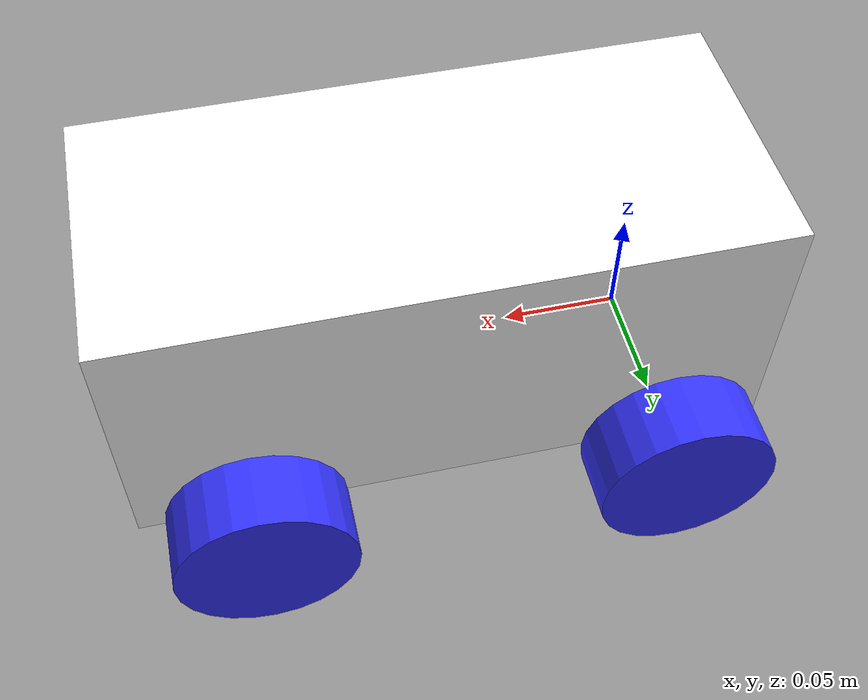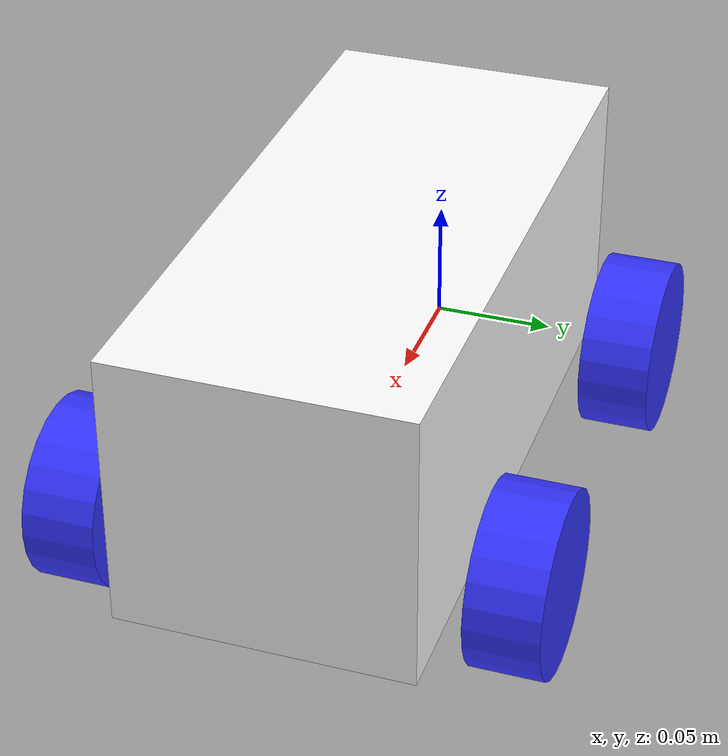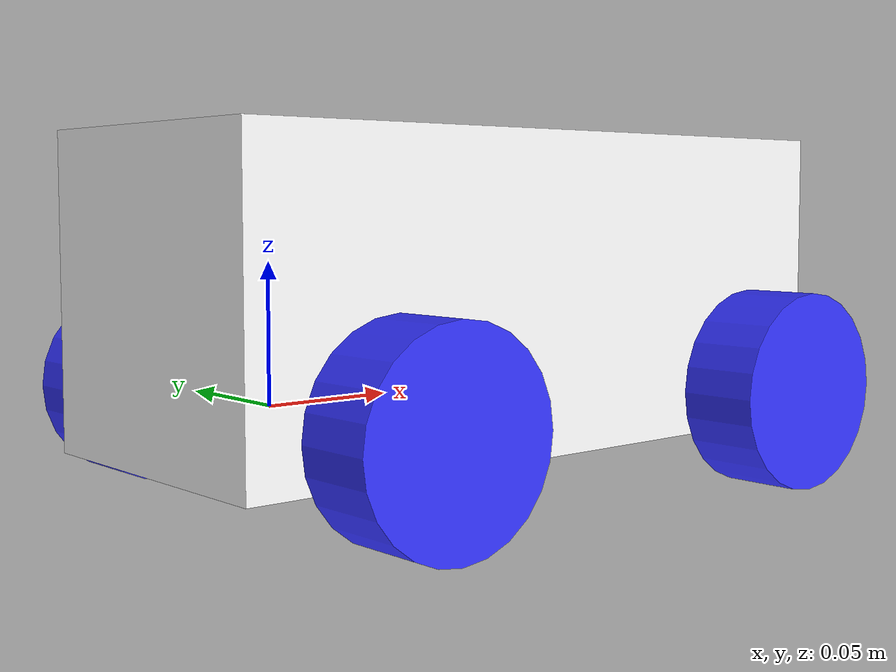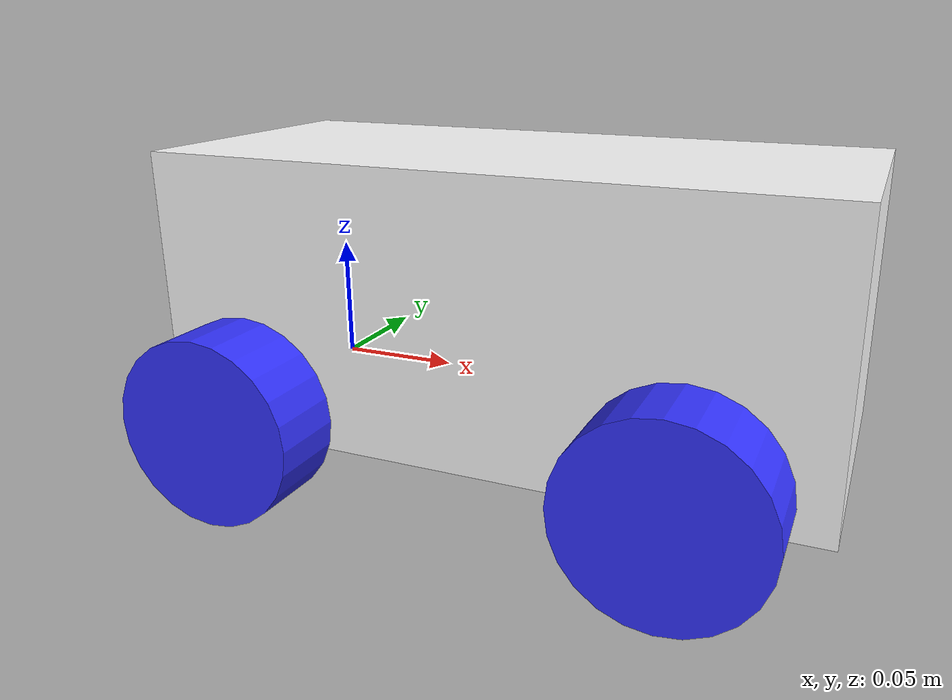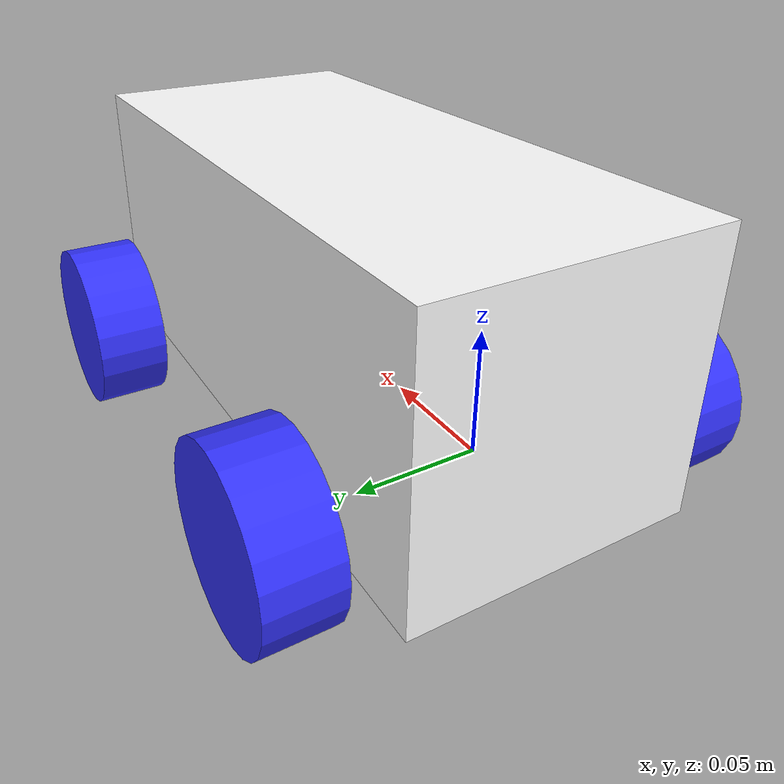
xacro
<?xml version="1.0"?>
<!-- 4 Wheel Robot with front steering and rear drive -->
<robot xmlns:xacro="http://www.ros.org/wiki/xacro" name="carlikebot_robot">
  <xacro:arg name="prefix" default="" />

  <xacro:include
    filename="carlikebot_description.urdf.xacro" />

  <!-- Import Rviz colors -->
  <xacro:include
    filename="carlikebot.materials.xacro" />

  <!-- Import carlikebot ros2_control description -->
  <xacro:include
    filename="$(find ackermann_arduino)/ros2_control/carlikebot.ros2_control.xacro" />

  <xacro:carlikebot prefix="$(arg prefix)" />

  <xacro:carlikebot_ros2_control
    name="CarlikeBot" prefix="$(arg prefix)" />

</robot>

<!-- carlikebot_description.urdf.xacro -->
<robot xmlns:xacro="http://www.ros.org/wiki/xacro">
  <xacro:include filename="inertial_macros.xacro" />

  <xacro:macro name="carlikebot" params="prefix">

    <!-- VARIABLES-->
    <xacro:property name="chassis_length" value="0.27" />
    <xacro:property name="chassis_width" value="0.1205" />
    <xacro:property name="chassis_height" value="0.115" />
    <xacro:property name="chassis_to_back_wheels_distance" value="0.048" />
    <xacro:property name="chassis_mass" value="1.1" />
    <xacro:property name="wheel_track" value="0.175" />
    <xacro:property name="front_wheel_track" value="0.11" />
    <xacro:property name="wheel_radius" value="0.0368" />
    <xacro:property name="wheel_length" value="0.0295" />
    <xacro:property name="wheel_mass" value="0.05" />
    <xacro:property name="wheel_base" value="0.172" />

    <!-- BASE LINK -->
    <link name="base_link" />

    <!-- BASE_FOOTPRINT LINK -->

    <joint name="base_footprint_joint" type="fixed">
      <parent link="base_link" />
      <child link="base_footprint" />
      <origin xyz="0 0 0" rpy="0 0 0" />
    </joint>

    <link name="base_footprint" />

    <!-- CHASSIS LINK -->
    <joint name="chassis_joint" type="fixed">
      <parent link="base_link" />
      <child link="chassis" />
      <origin xyz="-${chassis_to_back_wheels_distance} 0.0 0.0" />
    </joint>
    <link name="chassis">
      <visual>
        <origin xyz="${chassis_length/2} 0.0 ${chassis_height/3}" />
        <geometry>
          <box size="${chassis_length} ${chassis_width} ${chassis_height}" />
        </geometry>
        <material name="white" />
      </visual>
      <collision>
        <origin xyz="${chassis_length/2} 0.0 ${chassis_height/3}" />
        <geometry>
          <box size="${chassis_length} ${chassis_width} ${chassis_height}" />
        </geometry>
      </collision>
      <xacro:inertial_box mass="${chassis_mass}" x="${chassis_length}" y="${chassis_width}"
        z="${chassis_height}">
        <origin xyz="0.0 0 0.0" />
      </xacro:inertial_box>
    </link>

    <gazebo reference="chassis">
      <material>Gazebo/White</material>
    </gazebo>

    <!-- REAR LEFT WHEEL LINK -->
    <joint name="rear_left_wheel_joint" type="continuous">
      <parent link="base_link" />
      <child link="rear_left_wheel" />
      <origin xyz="0 ${wheel_track/2} 0" rpy="-${pi/2} 0 0" />
      <axis xyz="0 0 1" />
    </joint>

    <link name="rear_left_wheel">
      <visual>
        <geometry>
          <cylinder radius="${wheel_radius}" length="${wheel_length}" />
        </geometry>
        <material name="blue" />
      </visual>
      <collision>
        <geometry>
          <sphere radius="${wheel_radius}" />
        </geometry>
      </collision>
      <xacro:inertial_cylinder mass="${wheel_mass}" length="${wheel_length}"
        radius="${wheel_radius}">
        <origin xyz="0 0 0" rpy="0 0 0" />
      </xacro:inertial_cylinder>
    </link>

    <gazebo reference="rear_left_wheel">
      <material>Gazebo/Blue</material>
    </gazebo>

    <!-- REAR RIGHT WHEEL LINK -->
    <joint name="rear_right_wheel_joint" type="continuous">
      <parent link="base_link" />
      <child link="rear_right_wheel" />
      <origin xyz="0 -${wheel_track/2} 0" rpy="${pi/2} 0 0" />
      <axis xyz="0 0 -1" />
    </joint>

    <link name="rear_right_wheel">
      <visual>
        <geometry>
          <cylinder radius="${wheel_radius}" length="${wheel_length}" />
        </geometry>
        <material name="blue" />
      </visual>
      <collision>
        <geometry>
          <sphere radius="${wheel_radius}" />
        </geometry>
      </collision>
      <xacro:inertial_cylinder mass="${wheel_mass}" length="${wheel_length}"
        radius="${wheel_radius}">
        <origin xyz="0 0 0" rpy="0 0 0" />
      </xacro:inertial_cylinder>
    </link>

    <gazebo reference="rear_right_wheel">
      <material>Gazebo/Blue</material>
    </gazebo>

    <!-- FRONT RIGHT WHEEL LINK-->
    <joint name="front_right_wheel_joint" type="revolute">
      <parent link="base_link" />
      <child link="front_right_wheel" />
      <origin xyz="${wheel_base} -${front_wheel_track/2} 0" rpy="0 0 ${pi/2}" />
      <axis xyz="0 0 1" />
      <dynamics damping="0.2" />
      <limit lower="-0.49" upper="0.49" effort="100.0" velocity="0.0" />
    </joint>

    <link name="front_right_wheel">
      <visual>
        <origin xyz="-0.0325 0.0 0.0" rpy="${pi/2} 0 ${pi/2}" />
        <geometry>
          <cylinder radius="${wheel_radius}" length="${wheel_length}" />
        </geometry>
        <material name="blue" />
      </visual>
      <collision>
        <geometry>
          <sphere radius="${wheel_radius}" />
        </geometry>
      </collision>
      <xacro:inertial_cylinder mass="${wheel_mass}" length="${wheel_length}"
        radius="${wheel_radius}">
        <origin xyz="-0.0325 0.0 0" rpy="0 0 0" />
      </xacro:inertial_cylinder>
    </link>

    <!-- FRONT LEFT WHEEL LINK-->
    <joint name="front_left_wheel_joint" type="revolute">
      <parent link="base_link" />
      <child link="front_left_wheel" />
      <origin xyz="${wheel_base} ${front_wheel_track/2} 0" rpy="0 0 ${pi/2}" />
      <axis xyz="0 0 1" />
      <dynamics damping="0.2" />
      <limit lower="-0.49" upper="0.49" effort="100.0" velocity="0.0" />
    </joint>

    <link name="front_left_wheel">
      <visual>
        <origin xyz="0.0325 0.0 0.0" rpy="${pi/2} 0 ${pi/2}" />
        <geometry>
          <cylinder radius="${wheel_radius}" length="${wheel_length}" />
        </geometry>
        <material name="blue" />
      </visual>
      <collision>
        <geometry>
          <sphere radius="${wheel_radius}" />
        </geometry>
      </collision>
      <xacro:inertial_cylinder mass="${wheel_mass}" length="${wheel_length}"
        radius="${wheel_radius}">
        <origin xyz="0.0325 0.0 0.0" rpy="0 0 0" />
      </xacro:inertial_cylinder>
    </link>

  </xacro:macro>
</robot>

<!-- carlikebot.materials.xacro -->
<!--
Copied from ROS1 example:
https://github.com/ros-simulation/gazebo_ros_demos/blob/kinetic-devel/rrbot_description/urdf/materials.xacro
-->
<robot>

  <!-- COLORS -->
  <material name="white">
    <color rgba="1.0 1.0 1.0 1.0" />
  </material>

  <material name="orange">
    <color rgba="1.0 0.3 0.1 1.0" />
  </material>

  <material name="blue">
    <color rgba="0.2 0.2 1.0 1.0" />
  </material>

  <material name="black">
    <color rgba="0.0 0.0 0.0 1.0" />
  </material>

  <material name="red">
    <color rgba="1.0 0.0 0.0 1.0" />
  </material>

  <material name="invisible">
    <color rgba="1.0 1.0 1.0 0.0" />
  </material>

</robot>
